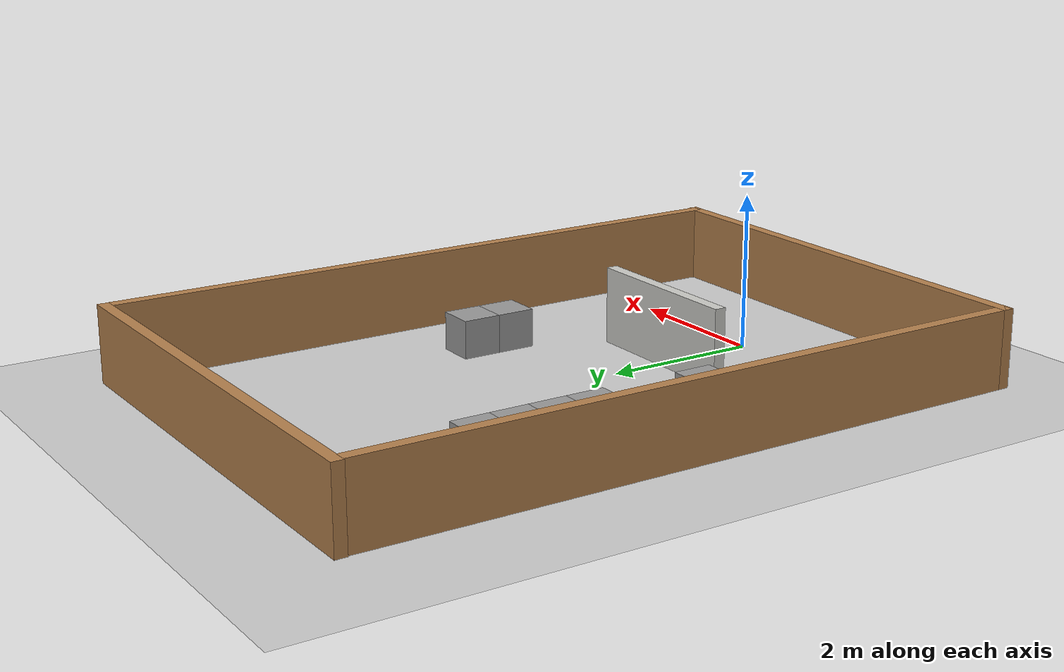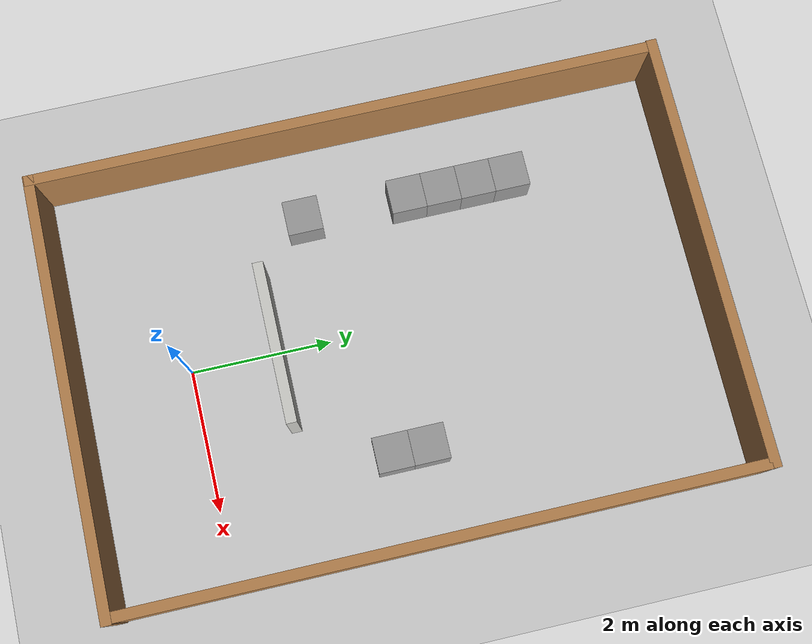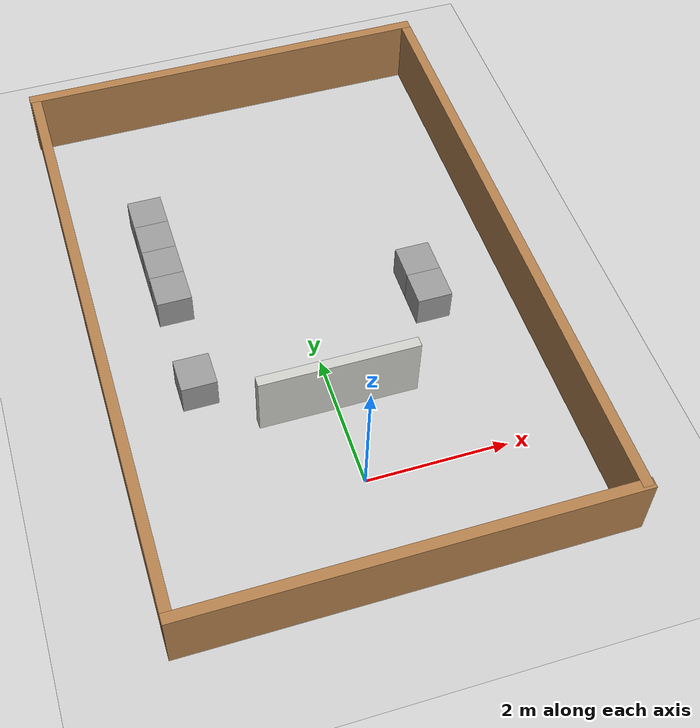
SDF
<sdf version="1.6">
 <world name="default">
  <light name="sun" type="directional">
   <pose>0 0 10 0 -0 0</pose>
   <diffuse>0.8 0.8 0.8 1</diffuse>
   <specular>0.1 0.1 0.1 1</specular>
   <attenuation>
    <range>1000</range>
    <constant>0.9</constant>
    <linear>0.01</linear>
    <quadratic>0.001</quadratic>
   </attenuation>
   <direction>-0.5 0.5 -1</direction>
  </light>
  <model name="ground_plane">
   <static>1</static>
   <link name="link">
    <collision name="collision">
     <geometry><plane><normal>0 0 1</normal><size>100 100</size></plane></geometry>
     <surface><friction><ode><mu>100</mu><mu2>50</mu2></ode></friction></surface>
    </collision>
    <visual name="visual">
     <cast_shadows>0</cast_shadows>
     <geometry><plane><normal>0 0 1</normal><size>100 100</size></plane></geometry>
     <material>
      <script><uri>file://media/materials/scripts/gazebo.material</uri><name>Gazebo/Grey</name></script>
     </material>
    </visual>
   </link>
  </model>
  <gravity>0 0 -9.8</gravity>
  <magnetic_field>6e-06 2.3e-05 -4.2e-05</magnetic_field>
  <atmosphere type="adiabatic"/>
  <physics name="default_physics" default="0" type="ode">
   <max_step_size>0.001</max_step_size>
   <real_time_factor>1</real_time_factor>
   <real_time_update_rate>1000</real_time_update_rate>
  </physics>
  <scene><ambient>0.4 0.4 0.4 1</ambient><background>0.7 0.7 0.7 1</background><shadows>1</shadows></scene>
  <spherical_coordinates>
   <surface_model>EARTH_WGS84</surface_model>
   <latitude_deg>0</latitude_deg>
   <longitude_deg>0</longitude_deg>
   <elevation>0</elevation>
   <heading_deg>0</heading_deg>
  </spherical_coordinates>
  <model name="unit_box">
   <link name="link">
    <pose>0 0 -0.25 0 -0 0</pose>
    <visual name="visual">
     <geometry><box><size>0.5 0.5 0.5</size></box></geometry>
     <material>
      <script><name>Gazebo/Grey</name><uri>file://media/materials/scripts/gazebo.material</uri></script>
      <ambient>0.8 0.8 0.8 1</ambient>
      <diffuse>0.7 0.7 0.7 1</diffuse>
      <specular>0.01 0.01 0.01 1</specular>
      <emissive>0 0 0 1</emissive>
      <shader type="vertex"><normal_map>__default__</normal_map></shader>
     </material>
    </visual>
    <collision name="collision">
     <geometry><box><size>0.5 0.5 0.5</size></box></geometry>
     <surface><friction><ode><mu>0.0</mu><mu2>0.0</mu2></ode></friction></surface>
    </collision>
   </link>
   <pose>-1.75583 5.0 0.5 0 -0 0</pose>
   <plugin name="random" filename="libRandomVelocityPlugin.so">
    <link>link</link>
    <initial_velocity>0 0.05 0</initial_velocity>
    <velocity_factor>1.5</velocity_factor>
    <update_period>3</update_period>
    <min_z>0</min_z>
    <max_z>0</max_z>
    <min_y>0</min_y>
    <max_y>0</max_y>
   </plugin>
  </model>
  <model name="unit_box">
   <link name="link">
    <pose>0 0 -0.25 0 -0 0</pose>
    <visual name="visual">
     <geometry><box><size>0.5 0.5 0.5</size></box></geometry>
     <material>
      <script><name>Gazebo/Grey</name><uri>file://media/materials/scripts/gazebo.material</uri></script>
      <ambient>0.8 0.8 0.8 1</ambient>
      <diffuse>0.7 0.7 0.7 1</diffuse>
      <specular>0.01 0.01 0.01 1</specular>
      <emissive>0 0 0 1</emissive>
      <shader type="vertex"><normal_map>__default__</normal_map></shader>
     </material>
    </visual>
    <collision name="collision">
     <geometry><box><size>0.5 0.5 0.5</size></box></geometry>
     <surface><friction><ode><mu>0.0</mu><mu2>0.0</mu2></ode></friction></surface>
    </collision>
   </link>
   <pose>-1.75583 4.5 0.5 0 -0 0</pose>
   <plugin name="random" filename="libRandomVelocityPlugin.so">
    <link>link</link>
    <initial_velocity>0 0.05 0</initial_velocity>
    <velocity_factor>1.5</velocity_factor>
    <update_period>3</update_period>
    <min_z>0</min_z>
    <max_z>0</max_z>
    <min_y>0</min_y>
    <max_y>0</max_y>
   </plugin>
  </model>
  <model name="unit_box">
   <link name="link">
    <pose>0 0 -0.25 0 -0 0</pose>
    <visual name="visual">
     <geometry><box><size>0.5 0.5 0.5</size></box></geometry>
     <material>
      <script><name>Gazebo/Grey</name><uri>file://media/materials/scripts/gazebo.material</uri></script>
      <ambient>0.8 0.8 0.8 1</ambient>
      <diffuse>0.7 0.7 0.7 1</diffuse>
      <specular>0.01 0.01 0.01 1</specular>
      <emissive>0 0 0 1</emissive>
      <shader type="vertex"><normal_map>__default__</normal_map></shader>
     </material>
    </visual>
    <collision name="collision">
     <geometry><box><size>0.5 0.5 0.5</size></box></geometry>
     <surface><friction><ode><mu>0.0</mu><mu2>0.0</mu2></ode></friction></surface>
    </collision>
   </link>
   <pose>-1.75583 4.0 0.5 0 -0 0</pose>
   <plugin name="random" filename="libRandomVelocityPlugin.so">
    <link>link</link>
    <initial_velocity>0 0.05 0</initial_velocity>
    <velocity_factor>1.5</velocity_factor>
    <update_period>3</update_period>
    <min_z>0</min_z>
    <max_z>0</max_z>
    <min_y>0</min_y>
    <max_y>0</max_y>
   </plugin>
  </model>
  <model name="unit_box">
   <link name="link">
    <pose>0 0 -0.25 0 -0 0</pose>
    <visual name="visual">
     <geometry><box><size>0.5 0.5 0.5</size></box></geometry>
     <material>
      <script><name>Gazebo/Grey</name><uri>file://media/materials/scripts/gazebo.material</uri></script>
      <ambient>0.8 0.8 0.8 1</ambient>
      <diffuse>0.7 0.7 0.7 1</diffuse>
      <specular>0.01 0.01 0.01 1</specular>
      <emissive>0 0 0 1</emissive>
      <shader type="vertex"><normal_map>__default__</normal_map></shader>
     </material>
    </visual>
    <collision name="collision">
     <geometry><box><size>0.5 0.5 0.5</size></box></geometry>
     <surface><friction><ode><mu>0.0</mu><mu2>0.0</mu2></ode></friction></surface>
    </collision>
   </link>
   <pose>-1.75583 3.5 0.5 0 -0 0</pose>
   <plugin name="random" filename="libRandomVelocityPlugin.so">
    <link>link</link>
    <initial_velocity>0 0.05 0</initial_velocity>
    <velocity_factor>1.5</velocity_factor>
    <update_period>3</update_period>
    <min_z>0</min_z>
    <max_z>0</max_z>
    <min_y>0</min_y>
    <max_y>0</max_y>
   </plugin>
  </model>
  <model name="unit_box_clone">
   <link name="link">
    <pose>0 0 -0.25 0 -0 0</pose>
    <visual name="visual">
     <geometry><box><size>0.5 0.5 0.5</size></box></geometry>
     <material>
      <script><name>Gazebo/Grey</name><uri>file://media/materials/scripts/gazebo.material</uri></script>
      <ambient>0.8 0.8 0.8 1</ambient>
      <diffuse>0.7 0.7 0.7 1</diffuse>
      <specular>0.01 0.01 0.01 1</specular>
      <emissive>0 0 0 1</emissive>
      <shader type="vertex"><normal_map>__default__</normal_map></shader>
     </material>
    </visual>
    <collision name="collision">
     <geometry><box><size>0.5 0.5 0.5</size></box></geometry>
     <surface><friction><ode><mu>0.0</mu><mu2>0.0</mu2></ode></friction></surface>
    </collision>
   </link>
   <pose>1.77095 3.0 0.5 0 -0 0</pose>
   <plugin name="random" filename="libRandomVelocityPlugin.so">
    <link>link</link>
    <initial_velocity>0 0.01 0</initial_velocity>
    <velocity_factor>1.5</velocity_factor>
    <update_period>3</update_period>
    <min_z>0</min_z>
    <max_z>0</max_z>
    <min_y>0</min_y>
    <max_y>0</max_y>
   </plugin>
  </model>
  <model name="unit_box_clone_xy">
   <link name="link">
    <pose>0 0 -0.25 0 -0 0</pose>
    <visual name="visual">
     <geometry><box><size>0.5 0.5 0.5</size></box></geometry>
     <material>
      <script><name>Gazebo/Grey</name><uri>file://media/materials/scripts/gazebo.material</uri></script>
      <ambient>0.8 0.8 0.8 1</ambient>
      <diffuse>0.7 0.7 0.7 1</diffuse>
      <specular>0.01 0.01 0.01 1</specular>
      <emissive>0 0 0 1</emissive>
      <shader type="vertex"><normal_map>__default__</normal_map></shader>
     </material>
    </visual>
    <collision name="collision">
     <geometry><box><size>0.5 0.5 0.5</size></box></geometry>
     <surface><friction><ode><mu>0.0</mu><mu2>0.0</mu2></ode></friction></surface>
    </collision>
   </link>
   <pose>1.77095 2.5 0.5 0 -0 0</pose>
   <plugin name="random" filename="libRandomVelocityPlugin.so">
    <link>link</link>
    <initial_velocity>0 0.01 0</initial_velocity>
    <velocity_factor>1.5</velocity_factor>
    <update_period>3</update_period>
    <min_z>0</min_z>
    <max_z>0</max_z>
    <min_y>0</min_y>
    <max_y>0</max_y>
   </plugin>
  </model>
  <model name="unit_box_clone_xy_1">
   <link name="link">
    <pose>0 0 -0.25 0 -0 0</pose>
    <visual name="visual">
     <geometry><box><size>0.5 0.5 0.5</size></box></geometry>
     <material>
      <script><name>Gazebo/Grey</name><uri>file://media/materials/scripts/gazebo.material</uri></script>
      <ambient>0.8 0.8 0.8 1</ambient>
      <diffuse>0.7 0.7 0.7 1</diffuse>
      <specular>0.01 0.01 0.01 1</specular>
      <emissive>0 0 0 1</emissive>
      <shader type="vertex"><normal_map>__default__</normal_map></shader>
     </material>
    </visual>
    <collision name="collision">
     <geometry><box><size>0.5 0.5 0.5</size></box></geometry>
     <surface><friction><ode><mu>0.0</mu><mu2>0.0</mu2></ode></friction></surface>
    </collision>
   </link>
   <pose>-1.77095 2.0 0.5 0 -0 0</pose>
   <plugin name="random" filename="libRandomVelocityPlugin.so">
    <link>link</link>
    <initial_velocity>0 0.01 0</initial_velocity>
    <velocity_factor>1.5</velocity_factor>
    <update_period>3</update_period>
    <min_z>0</min_z>
    <max_z>0</max_z>
    <min_y>0</min_y>
    <max_y>0</max_y>
   </plugin>
  </model>
  <model name="maze2_1">
   <link name="Wall_0">
    <pose>0.000129 -4.37975 -0.75 0 -0 3.14159</pose>
    <inertial>
     <mass>1</mass>
     <inertia><ixx>1</ixx><ixy>0</ixy><ixz>0</ixz><iyy>1</iyy><iyz>0</iyz><izz>1</izz></inertia>
    </inertial>
    <visual name="Wall_0_Visual">
     <pose>0 0 1.25 0 -0 0</pose>
     <geometry><box><size>6.189 0.15 1</size></box></geometry>
     <material>
      <script><uri>file://media/materials/scripts/gazebo.material</uri><name>Gazebo/Wood</name></script>
      <ambient>1 1 1 1</ambient>
      <diffuse>1 1 1 1</diffuse>
      <specular>0.2 0.2 0.2 1</specular>
      <emissive>0 0 0 1</emissive>
      <shader type="vertex"><normal_map>__default__</normal_map></shader>
     </material>
    </visual>
    <collision name="Wall_0_Collision">
     <pose>0 0 1.25 0 -0 0</pose>
     <geometry><box><size>6.189 0.15 1</size></box></geometry>
     <surface>
      <friction>
       <ode><mu>1</mu><mu2>1</mu2><fdir1>0 0 0</fdir1><slip1>0</slip1><slip2>0</slip2></ode>
       <torsional>
        <coefficient>1</coefficient>
        <patch_radius>0</patch_radius>
        <surface_radius>0</surface_radius>
        <use_patch_radius>1</use_patch_radius>
        <ode><slip>0</slip></ode>
       </torsional>
      </friction>
      <bounce><restitution_coefficient>0</restitution_coefficient><threshold>1e+06</threshold></bounce>
      <contact>
       <collide_without_contact>0</collide_without_contact>
       <collide_without_contact_bitmask>1</collide_without_contact_bitmask>
       <collide_bitmask>1</collide_bitmask>
       <ode>
        <soft_cfm>0</soft_cfm>
        <soft_erp>0.2</soft_erp>
        <kp>1e+13</kp>
        <kd>1</kd>
        <max_vel>0.01</max_vel>
        <min_depth>0</min_depth>
       </ode>
       <bullet>
        <split_impulse>1</split_impulse>
        <split_impulse_penetration_threshold>-0.01</split_impulse_penetration_threshold>
        <soft_cfm>0</soft_cfm>
        <soft_erp>0.2</soft_erp>
        <kp>1e+13</kp>
        <kd>1</kd>
       </bullet>
      </contact>
     </surface>
    </collision>
   </link>
   <link name="Wall_0_clone">
    <pose>-0.016684 4.53708 -0.75 0 -0 3.14159</pose>
    <inertial>
     <mass>1</mass>
     <inertia><ixx>1</ixx><ixy>0</ixy><ixz>0</ixz><iyy>1</iyy><iyz>0</iyz><izz>1</izz></inertia>
    </inertial>
    <visual name="Wall_0_Visual">
     <pose>0 0 1.25 0 -0 0</pose>
     <geometry><box><size>6.189 0.15 1</size></box></geometry>
     <material>
      <script><uri>file://media/materials/scripts/gazebo.material</uri><name>Gazebo/Wood</name></script>
      <ambient>1 1 1 1</ambient>
      <diffuse>1 1 1 1</diffuse>
      <specular>0.2 0.2 0.2 1</specular>
      <emissive>0 0 0 1</emissive>
      <shader type="vertex"><normal_map>__default__</normal_map></shader>
     </material>
    </visual>
    <collision name="Wall_0_Collision">
     <pose>0 0 1.25 0 -0 0</pose>
     <geometry><box><size>6.189 0.15 1</size></box></geometry>
     <surface>
      <friction>
       <ode><mu>1</mu><mu2>1</mu2><fdir1>0 0 0</fdir1><slip1>0</slip1><slip2>0</slip2></ode>
       <torsional>
        <coefficient>1</coefficient>
        <patch_radius>0</patch_radius>
        <surface_radius>0</surface_radius>
        <use_patch_radius>1</use_patch_radius>
        <ode><slip>0</slip></ode>
       </torsional>
      </friction>
      <bounce><restitution_coefficient>0</restitution_coefficient><threshold>1e+06</threshold></bounce>
      <contact>
       <collide_without_contact>0</collide_without_contact>
       <collide_without_contact_bitmask>1</collide_without_contact_bitmask>
       <collide_bitmask>1</collide_bitmask>
       <ode>
        <soft_cfm>0</soft_cfm>
        <soft_erp>0.2</soft_erp>
        <kp>1e+13</kp>
        <kd>1</kd>
        <max_vel>0.01</max_vel>
        <min_depth>0</min_depth>
       </ode>
       <bullet>
        <split_impulse>1</split_impulse>
        <split_impulse_penetration_threshold>-0.01</split_impulse_penetration_threshold>
        <soft_cfm>0</soft_cfm>
        <soft_erp>0.2</soft_erp>
        <kp>1e+13</kp>
        <kd>1</kd>
       </bullet>
      </contact>
     </surface>
    </collision>
   </link>
   <link name="Wall_20">
    <pose>-0.0498 -1.53737 -0.75 0 -0 0</pose>
    <inertial>
     <mass>1</mass>
     <inertia><ixx>1</ixx><ixy>0</ixy><ixz>0</ixz><iyy>1</iyy><iyz>0</iyz><izz>1</izz></inertia>
    </inertial>
    <visual name="Wall_20_Visual">
     <pose>0 0 1.25 0 -0 0</pose>
     <geometry><box><size>2.25 0.15 1</size></box></geometry>
     <material>
      <script><uri>file://media/materials/scripts/gazebo.material</uri><name>Gazebo/CeilingTiled</name></script>
      <ambient>1 1 1 1</ambient>
      <diffuse>1 1 1 1</diffuse>
      <specular>0 0 0 1</specular>
      <emissive>0 0 0 1</emissive>
      <shader type="vertex"><normal_map>__default__</normal_map></shader>
     </material>
    </visual>
    <collision name="Wall_20_Collision">
     <pose>0 0 1.25 0 -0 0</pose>
     <geometry><box><size>2.25 0.15 1</size></box></geometry>
     <surface>
      <friction>
       <ode><mu>1</mu><mu2>1</mu2><fdir1>0 0 0</fdir1><slip1>0</slip1><slip2>0</slip2></ode>
       <torsional>
        <coefficient>1</coefficient>
        <patch_radius>0</patch_radius>
        <surface_radius>0</surface_radius>
        <use_patch_radius>1</use_patch_radius>
        <ode><slip>0</slip></ode>
       </torsional>
      </friction>
      <bounce><restitution_coefficient>0</restitution_coefficient><threshold>1e+06</threshold></bounce>
      <contact>
       <collide_without_contact>0</collide_without_contact>
       <collide_without_contact_bitmask>1</collide_without_contact_bitmask>
       <collide_bitmask>1</collide_bitmask>
       <ode>
        <soft_cfm>0</soft_cfm>
        <soft_erp>0.2</soft_erp>
        <kp>1e+13</kp>
        <kd>1</kd>
        <max_vel>0.01</max_vel>
        <min_depth>0</min_depth>
       </ode>
       <bullet>
        <split_impulse>1</split_impulse>
        <split_impulse_penetration_threshold>-0.01</split_impulse_penetration_threshold>
        <soft_cfm>0</soft_cfm>
        <soft_erp>0.2</soft_erp>
        <kp>1e+13</kp>
        <kd>1</kd>
       </bullet>
      </contact>
     </surface>
    </collision>
   </link>
   <link name="Wall_3">
    <pose>-3.01932 0.012229 -0.75 0 -0 1.5708</pose>
    <inertial>
     <mass>1</mass>
     <inertia><ixx>1</ixx><ixy>0</ixy><ixz>0</ixz><iyy>1</iyy><iyz>0</iyz><izz>1</izz></inertia>
    </inertial>
    <visual name="Wall_3_Visual">
     <pose>0 0 1.25 0 -0 0</pose>
     <geometry><box><size>8.911 0.15 1</size></box></geometry>
     <material>
      <script><uri>file://media/materials/scripts/gazebo.material</uri><name>Gazebo/Wood</name></script>
      <ambient>1 1 1 1</ambient>
      <diffuse>1 1 1 1</diffuse>
      <specular>0.2 0.2 0.2 1</specular>
      <emissive>0 0 0 1</emissive>
      <shader type="vertex"><normal_map>__default__</normal_map></shader>
     </material>
    </visual>
    <collision name="Wall_3_Collision">
     <pose>0 0 1.25 0 -0 0</pose>
     <geometry><box><size>8.911 0.15 1</size></box></geometry>
     <surface>
      <friction>
       <ode><mu>1</mu><mu2>1</mu2><fdir1>0 0 0</fdir1><slip1>0</slip1><slip2>0</slip2></ode>
       <torsional>
        <coefficient>1</coefficient>
        <patch_radius>0</patch_radius>
        <surface_radius>0</surface_radius>
        <use_patch_radius>1</use_patch_radius>
        <ode><slip>0</slip></ode>
       </torsional>
      </friction>
      <bounce><restitution_coefficient>0</restitution_coefficient><threshold>1e+06</threshold></bounce>
      <contact>
       <collide_without_contact>0</collide_without_contact>
       <collide_without_contact_bitmask>1</collide_without_contact_bitmask>
       <collide_bitmask>1</collide_bitmask>
       <ode>
        <soft_cfm>0</soft_cfm>
        <soft_erp>0.2</soft_erp>
        <kp>1e+13</kp>
        <kd>1</kd>
        <max_vel>0.01</max_vel>
        <min_depth>0</min_depth>
       </ode>
       <bullet>
        <split_impulse>1</split_impulse>
        <split_impulse_penetration_threshold>-0.01</split_impulse_penetration_threshold>
        <soft_cfm>0</soft_cfm>
        <soft_erp>0.2</soft_erp>
        <kp>1e+13</kp>
        <kd>1</kd>
       </bullet>
      </contact>
     </surface>
    </collision>
   </link>
   <link name="Wall_3_clone">
    <pose>3.00482 0.041646 -0.75 0 -0 1.5708</pose>
    <inertial>
     <mass>1</mass>
     <inertia><ixx>1</ixx><ixy>0</ixy><ixz>0</ixz><iyy>1</iyy><iyz>0</iyz><izz>1</izz></inertia>
    </inertial>
    <visual name="Wall_3_Visual">
     <pose>0 0 1.25 0 -0 0</pose>
     <geometry><box><size>8.911 0.15 1</size></box></geometry>
     <material>
      <script><uri>file://media/materials/scripts/gazebo.material</uri><name>Gazebo/Wood</name></script>
      <ambient>1 1 1 1</ambient>
      <diffuse>1 1 1 1</diffuse>
      <specular>0.2 0.2 0.2 1</specular>
      <emissive>0 0 0 1</emissive>
      <shader type="vertex"><normal_map>__default__</normal_map></shader>
     </material>
    </visual>
    <collision name="Wall_3_Collision">
     <pose>0 0 1.25 0 -0 0</pose>
     <geometry><box><size>8.911 0.15 1</size></box></geometry>
     <surface>
      <friction>
       <ode><mu>1</mu><mu2>1</mu2><fdir1>0 0 0</fdir1><slip1>0</slip1><slip2>0</slip2></ode>
       <torsional>
        <coefficient>1</coefficient>
        <patch_radius>0</patch_radius>
        <surface_radius>0</surface_radius>
        <use_patch_radius>1</use_patch_radius>
        <ode><slip>0</slip></ode>
       </torsional>
      </friction>
      <bounce><restitution_coefficient>0</restitution_coefficient><threshold>1e+06</threshold></bounce>
      <contact>
       <collide_without_contact>0</collide_without_contact>
       <collide_without_contact_bitmask>1</collide_without_contact_bitmask>
       <collide_bitmask>1</collide_bitmask>
       <ode>
        <soft_cfm>0</soft_cfm>
        <soft_erp>0.2</soft_erp>
        <kp>1e+13</kp>
        <kd>1</kd>
        <max_vel>0.01</max_vel>
        <min_depth>0</min_depth>
       </ode>
       <bullet>
        <split_impulse>1</split_impulse>
        <split_impulse_penetration_threshold>-0.01</split_impulse_penetration_threshold>
        <soft_cfm>0</soft_cfm>
        <soft_erp>0.2</soft_erp>
        <kp>1e+13</kp>
        <kd>1</kd>
       </bullet>
      </contact>
     </surface>
    </collision>
   </link>
   <static>1</static>
   <pose>0.073821 2.80316 0 0 -0 0</pose>
  </model>
 </world>
</sdf>
